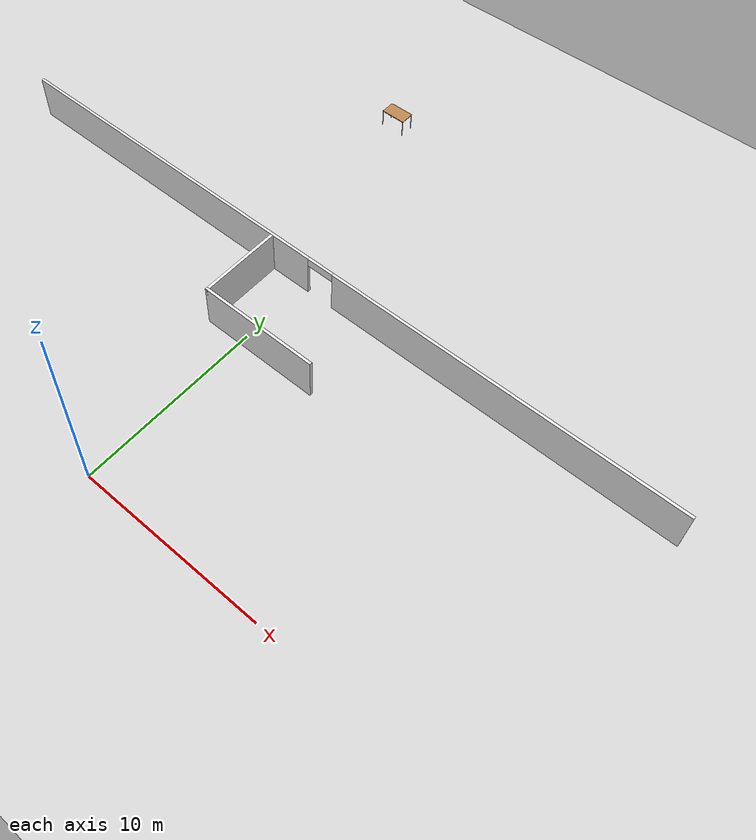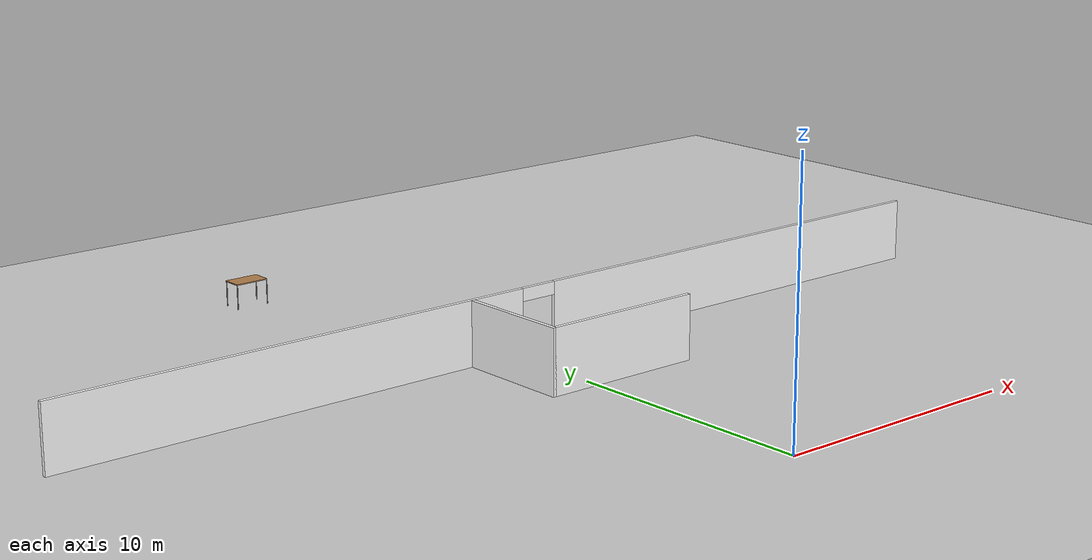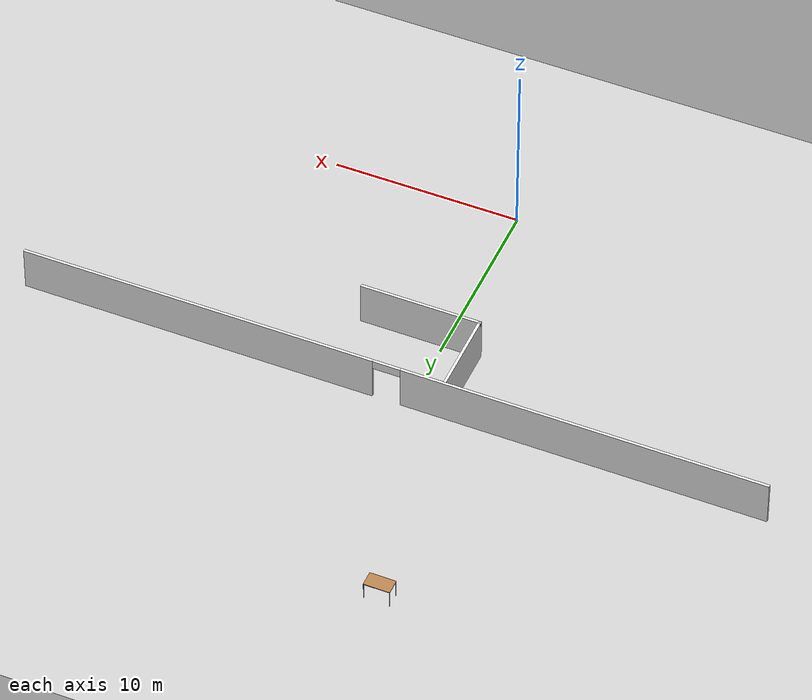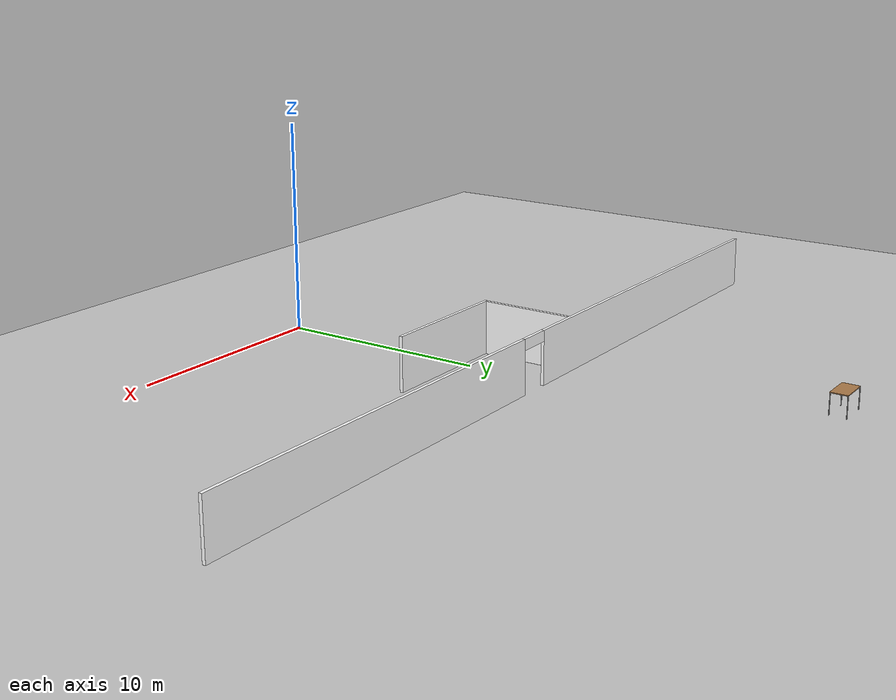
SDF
<sdf version="1.6">
 <world name="default">
  <model name="ground_plane">
   <static>1</static>
   <link name="link">
    <collision name="collision">
     <geometry><plane><normal>0 0 1</normal><size>100 100</size></plane></geometry>
     <surface><friction><ode><mu>100</mu><mu2>50</mu2></ode></friction></surface>
    </collision>
    <visual name="visual">
     <cast_shadows>0</cast_shadows>
     <geometry><plane><normal>0 0 1</normal><size>100 100</size></plane></geometry>
     <material>
      <script>
       <uri>model://office_env/materials/scripts</uri>
       <uri>model://office_env/materials/textures</uri>
       <name>wall</name>
      </script>
     </material>
    </visual>
   </link>
  </model>
  <model name="aule_N">
   <pose>0.1887 -1.4289 0 0 -0 0</pose>
   <link name="Wall_147">
    <collision name="Wall_147_Collision">
     <geometry><box><size>4.5 0.15 2.5</size></box></geometry>
     <pose>0 0 1.25 0 -0 0</pose>
    </collision>
    <visual name="Wall_147_Visual">
     <pose>0 0 1.25 0 -0 0</pose>
     <geometry><box><size>4.5 0.15 2.5</size></box></geometry>
     <material>
      <script>
       <uri>model://office_env/materials/scripts</uri>
       <uri>model://office_env/materials/textures</uri>
       <name>wall</name>
      </script>
      <ambient>1 1 1 1</ambient>
     </material>
    </visual>
    <pose>-2.1259 13.1481 0 0 0 -1.5708</pose>
   </link>
   <link name="Wall_148">
    <collision name="Wall_148_Collision">
     <geometry><box><size>6.5 0.15 2.5</size></box></geometry>
     <pose>0 0 1.25 0 -0 0</pose>
    </collision>
    <visual name="Wall_148_Visual">
     <pose>0 0 1.25 0 -0 0</pose>
     <geometry><box><size>6.5 0.15 2.5</size></box></geometry>
     <material>
      <script>
       <uri>model://office_env/materials/scripts</uri>
       <uri>model://office_env/materials/textures</uri>
       <name>wall</name>
      </script>
      <ambient>1 1 1 1</ambient>
     </material>
    </visual>
    <pose>1.0491 10.9731 0 0 -0 0</pose>
   </link>
   <link name="Wall_48">
    <pose>0.767861 15.4639 0 0 -0 3.14159</pose>
    <visual name="Wall_48_Visual_0">
     <pose>-10.4634 0 1.25 0 -0 0</pose>
     <geometry><box><size>19.0732 0.15 2.5</size></box></geometry>
     <material>
      <script>
       <uri>model://office_env/materials/scripts</uri>
       <uri>model://office_env/materials/textures</uri>
       <name>wall</name>
      </script>
      <ambient>1 1 1 1</ambient>
     </material>
    </visual>
    <collision name="Wall_48_Collision_0">
     <geometry><box><size>19.0732 0.15 2.5</size></box></geometry>
     <pose>-10.4634 0 1.25 0 -0 0</pose>
    </collision>
    <visual name="Wall_48_Visual_1">
     <pose>10.2866 0 1.25 0 -0 0</pose>
     <geometry><box><size>19.4268 0.15 2.5</size></box></geometry>
     <material>
      <script>
       <uri>model://office_env/materials/scripts</uri>
       <uri>model://office_env/materials/textures</uri>
       <name>wall</name>
      </script>
      <ambient>1 1 1 1</ambient>
     </material>
    </visual>
    <collision name="Wall_48_Collision_1">
     <geometry><box><size>19.4268 0.15 2.5</size></box></geometry>
     <pose>10.2866 0 1.25 0 -0 0</pose>
    </collision>
    <visual name="Wall_48_Visual_2">
     <pose>-0.176821 0 2.25 0 -0 0</pose>
     <geometry><box><size>1.5 0.15 0.5</size></box></geometry>
     <material>
      <script>
       <uri>model://office_env/materials/scripts</uri>
       <uri>model://office_env/materials/textures</uri>
       <name>wall</name>
      </script>
      <ambient>1 1 1 1</ambient>
     </material>
    </visual>
    <collision name="Wall_48_Collision_2">
     <geometry><box><size>1.5 0.15 0.5</size></box></geometry>
     <pose>-0.176821 0 2.25 0 -0 0</pose>
    </collision>
   </link>
   <static>1</static>
  </model>
  <model name="table_5">
   <static>0</static>
   <link name="link">
    <collision name="surface">
     <pose>0 0 1 0 -0 0</pose>
     <geometry><box><size>1.5 0.8 0.03</size></box></geometry>
     <surface><friction><ode><mu>0.6</mu><mu2>0.6</mu2></ode></friction></surface>
    </collision>
    <visual name="visual1">
     <pose>0 0 1 0 -0 0</pose>
     <geometry><box><size>1.4 0.8 0.04</size></box></geometry>
     <material>
      <script><uri>file://media/materials/scripts/gazebo.material</uri><name>Gazebo/Wood</name></script>
     </material>
    </visual>
    <collision name="front_left_leg">
     <pose>0.68 0.38 0.5 0 -0 0</pose>
     <geometry><cylinder><radius>0.02</radius><length>1</length></cylinder></geometry>
    </collision>
    <visual name="front_left_leg">
     <pose>0.68 0.38 0.5 0 -0 0</pose>
     <geometry><cylinder><radius>0.02</radius><length>1</length></cylinder></geometry>
     <material>
      <script>
       <uri>model://office_env/materials/scripts</uri>
       <uri>model://office_env/materials/textures</uri>
       <name>wall</name>
      </script>
     </material>
    </visual>
    <collision name="front_right_leg">
     <pose>0.68 -0.38 0.5 0 -0 0</pose>
     <geometry><cylinder><radius>0.02</radius><length>1</length></cylinder></geometry>
    </collision>
    <visual name="front_right_leg">
     <pose>0.68 -0.38 0.5 0 -0 0</pose>
     <geometry><cylinder><radius>0.02</radius><length>1</length></cylinder></geometry>
     <material>
      <script>
       <uri>model://office_env/materials/scripts</uri>
       <uri>model://office_env/materials/textures</uri>
       <name>wall</name>
      </script>
     </material>
    </visual>
    <collision name="back_right_leg">
     <pose>-0.68 -0.38 0.5 0 -0 0</pose>
     <geometry><cylinder><radius>0.02</radius><length>1</length></cylinder></geometry>
    </collision>
    <visual name="back_right_leg">
     <pose>-0.68 -0.38 0.5 0 -0 0</pose>
     <geometry><cylinder><radius>0.02</radius><length>1</length></cylinder></geometry>
     <material>
      <script>
       <uri>model://office_env/materials/scripts</uri>
       <uri>model://office_env/materials/textures</uri>
       <name>wall</name>
      </script>
     </material>
    </visual>
    <collision name="back_left_leg">
     <pose>-0.68 0.38 0.5 0 -0 0</pose>
     <geometry><cylinder><radius>0.02</radius><length>1</length></cylinder></geometry>
    </collision>
    <visual name="back_left_leg">
     <pose>-0.68 0.38 0.5 0 -0 0</pose>
     <geometry><cylinder><radius>0.02</radius><length>1</length></cylinder></geometry>
     <material>
      <script>
       <uri>model://office_env/materials/scripts</uri>
       <uri>model://office_env/materials/textures</uri>
       <name>wall</name>
      </script>
     </material>
    </visual>
    <inertial>
     <inertia><ixx>1</ixx><ixy>0</ixy><ixz>0</ixz><iyy>1</iyy><iyz>0</iyz><izz>1</izz></inertia>
     <mass>1</mass>
    </inertial>
   </link>
   <pose>-3.71491 26.0335 0.009992 0 -0 0</pose>
  </model>
 </world>
</sdf>
